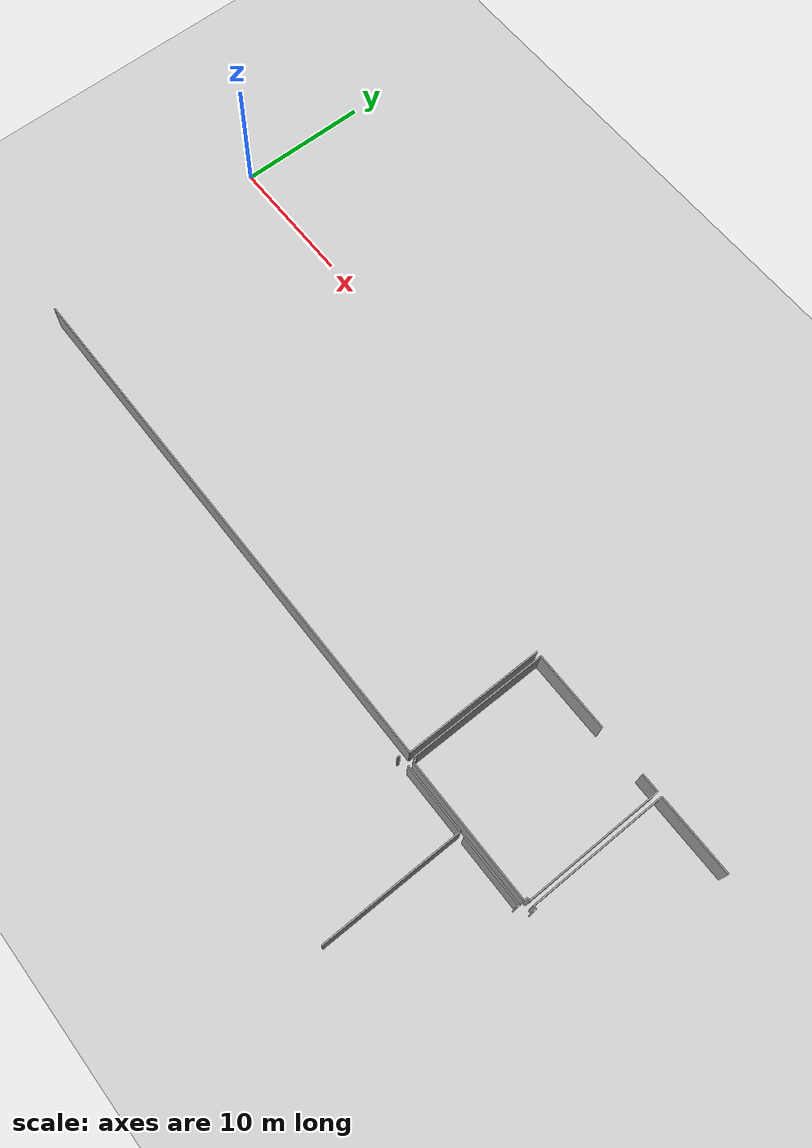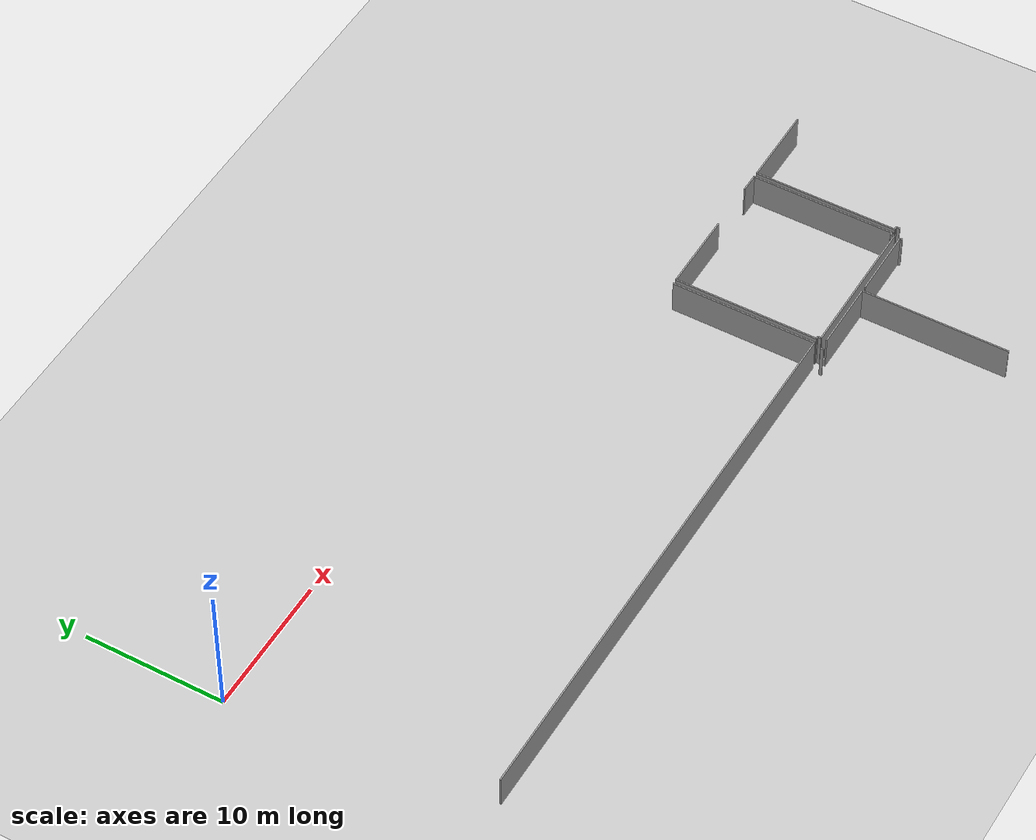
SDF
<sdf version="1.6">
 <world name="default">
  <model name="ground_plane">
   <static>1</static>
   <link name="link">
    <collision name="collision">
     <geometry><plane><normal>0 0 1</normal><size>100 100</size></plane></geometry>
     <surface><friction><ode><mu>100</mu><mu2>50</mu2></ode></friction></surface>
    </collision>
    <visual name="visual">
     <cast_shadows>0</cast_shadows>
     <geometry><plane><normal>0 0 1</normal><size>100 100</size></plane></geometry>
     <material>
      <script><uri>file://media/materials/scripts/gazebo.material</uri><name>Gazebo/Grey</name></script>
     </material>
    </visual>
   </link>
  </model>
  <model name="50015847">
   <static>1</static>
   <link name="Wall_978">
    <collision name="Wall_978_Collision">
     <geometry><box><size>10.3416891239 0.1 2.5</size></box></geometry>
     <pose>5.17084456196 0 1.25 0 0 0</pose>
    </collision>
    <visual name="Wall_978_Visual">
     <pose>5.17084456196 0 1.25 0 0 0</pose>
     <geometry><box><size>10.3416891239 0.1 2.5</size></box></geometry>
     <material>
      <script><uri>file://media/materials/scripts/gazebo.material</uri><name>Gazebo/Grey</name></script>
      <ambient>1 1 1 1</ambient>
     </material>
    </visual>
    <pose>185.824986017 -62.2814867545 0 0 0 1.57079632679</pose>
   </link>
   <link name="Wall_979">
    <collision name="Wall_979_Collision">
     <geometry><box><size>5.85371434382 0.1 2.5</size></box></geometry>
     <pose>2.92685717191 0 1.25 0 0 0</pose>
    </collision>
    <visual name="Wall_979_Visual">
     <pose>2.92685717191 0 1.25 0 0 0</pose>
     <geometry><box><size>5.85371434382 0.1 2.5</size></box></geometry>
     <material>
      <script><uri>file://media/materials/scripts/gazebo.material</uri><name>Gazebo/Grey</name></script>
      <ambient>1 1 1 1</ambient>
     </material>
    </visual>
    <pose>185.824986017 -51.9397976305 0 0 0 0.0</pose>
   </link>
   <link name="Wall_986">
    <collision name="Wall_986_Collision">
     <geometry><box><size>0.262368434433 0.1 2.5</size></box></geometry>
     <pose>0.131184217217 0 1.25 0 0 0</pose>
    </collision>
    <visual name="Wall_986_Visual">
     <pose>0.131184217217 0 1.25 0 0 0</pose>
     <geometry><box><size>0.262368434433 0.1 2.5</size></box></geometry>
     <material>
      <script><uri>file://media/materials/scripts/gazebo.material</uri><name>Gazebo/Grey</name></script>
      <ambient>1 1 1 1</ambient>
     </material>
    </visual>
    <pose>186.072100473 -62.530380841 0 0 0 1.57079632679</pose>
   </link>
   <link name="Wall_987">
    <collision name="Wall_987_Collision">
     <geometry><box><size>0.247481539232 0.1 2.5</size></box></geometry>
     <pose>0.123740769616 0 1.25 0 0 0</pose>
    </collision>
    <visual name="Wall_987_Visual">
     <pose>0.123740769616 0 1.25 0 0 0</pose>
     <geometry><box><size>0.247481539232 0.1 2.5</size></box></geometry>
     <material>
      <script><uri>file://media/materials/scripts/gazebo.material</uri><name>Gazebo/Grey</name></script>
      <ambient>1 1 1 1</ambient>
     </material>
    </visual>
    <pose>186.072100473 -62.2680124066 0 0 0 -3.08711984745</pose>
   </link>
   <link name="Wall_988">
    <collision name="Wall_988_Collision">
     <geometry><box><size>10.3345706005 0.1 2.5</size></box></geometry>
     <pose>5.16728530025 0 1.25 0 0 0</pose>
    </collision>
    <visual name="Wall_988_Visual">
     <pose>5.16728530025 0 1.25 0 0 0</pose>
     <geometry><box><size>10.3345706005 0.1 2.5</size></box></geometry>
     <material>
      <script><uri>file://media/materials/scripts/gazebo.material</uri><name>Gazebo/Grey</name></script>
      <ambient>1 1 1 1</ambient>
     </material>
    </visual>
    <pose>174.623735191 -62.2680124066 0 0 0 1.57079632679</pose>
   </link>
   <link name="Wall_989">
    <collision name="Wall_989_Collision">
     <geometry><box><size>5.8199013576 0.1 2.5</size></box></geometry>
     <pose>2.9099506788 0 1.25 0 0 0</pose>
    </collision>
    <visual name="Wall_989_Visual">
     <pose>2.9099506788 0 1.25 0 0 0</pose>
     <geometry><box><size>5.8199013576 0.1 2.5</size></box></geometry>
     <material>
      <script><uri>file://media/materials/scripts/gazebo.material</uri><name>Gazebo/Grey</name></script>
      <ambient>1 1 1 1</ambient>
     </material>
    </visual>
    <pose>174.623735191 -51.9334418061 0 0 0 0.0</pose>
   </link>
   <link name="Wall_990">
    <collision name="Wall_990_Collision">
     <geometry><box><size>1.35709564245 0.1 2.5</size></box></geometry>
     <pose>0.678547821223 0 1.25 0 0 0</pose>
    </collision>
    <visual name="Wall_990_Visual">
     <pose>0.678547821223 0 1.25 0 0 0</pose>
     <geometry><box><size>1.35709564245 0.1 2.5</size></box></geometry>
     <material>
      <script><uri>file://media/materials/scripts/gazebo.material</uri><name>Gazebo/Grey</name></script>
      <ambient>1 1 1 1</ambient>
     </material>
    </visual>
    <pose>184.110438806 -51.9334418061 0 0 0 0.0</pose>
   </link>
   <link name="Wall_991">
    <collision name="Wall_991_Collision">
     <geometry><box><size>10.3302486399 0.1 2.5</size></box></geometry>
     <pose>5.16512431993 0 1.25 0 0 0</pose>
    </collision>
    <visual name="Wall_991_Visual">
     <pose>5.16512431993 0 1.25 0 0 0</pose>
     <geometry><box><size>10.3302486399 0.1 2.5</size></box></geometry>
     <material>
      <script><uri>file://media/materials/scripts/gazebo.material</uri><name>Gazebo/Grey</name></script>
      <ambient>1 1 1 1</ambient>
     </material>
    </visual>
    <pose>185.467534449 -51.9334418061 0 0 0 -1.57079632679</pose>
   </link>
   <link name="Wall_992">
    <collision name="Wall_992_Collision">
     <geometry><box><size>0.210250673717 0.1 2.5</size></box></geometry>
     <pose>0.105125336859 0 1.25 0 0 0</pose>
    </collision>
    <visual name="Wall_992_Visual">
     <pose>0.105125336859 0 1.25 0 0 0</pose>
     <geometry><box><size>0.210250673717 0.1 2.5</size></box></geometry>
     <material>
      <script><uri>file://media/materials/scripts/gazebo.material</uri><name>Gazebo/Grey</name></script>
      <ambient>1 1 1 1</ambient>
     </material>
    </visual>
    <pose>185.467534449 -62.2636904459 0 0 0 3.14159265359</pose>
   </link>
   <link name="Wall_993">
    <collision name="Wall_993_Collision">
     <geometry><box><size>0.258046473789 0.1 2.5</size></box></geometry>
     <pose>0.129023236894 0 1.25 0 0 0</pose>
    </collision>
    <visual name="Wall_993_Visual">
     <pose>0.129023236894 0 1.25 0 0 0</pose>
     <geometry><box><size>0.258046473789 0.1 2.5</size></box></geometry>
     <material>
      <script><uri>file://media/materials/scripts/gazebo.material</uri><name>Gazebo/Grey</name></script>
      <ambient>1 1 1 1</ambient>
     </material>
    </visual>
    <pose>185.257283775 -62.2636904459 0 0 0 -1.57079632679</pose>
   </link>
   <link name="Wall_994">
    <collision name="Wall_994_Collision">
     <geometry><box><size>10.4321960645 0.1 2.5</size></box></geometry>
     <pose>5.21609803224 0 1.25 0 0 0</pose>
    </collision>
    <visual name="Wall_994_Visual">
     <pose>5.21609803224 0 1.25 0 0 0</pose>
     <geometry><box><size>10.4321960645 0.1 2.5</size></box></geometry>
     <material>
      <script><uri>file://media/materials/scripts/gazebo.material</uri><name>Gazebo/Grey</name></script>
      <ambient>1 1 1 1</ambient>
     </material>
    </visual>
    <pose>185.257283775 -62.5217369197 0 0 0 3.14159265359</pose>
   </link>
   <link name="Wall_995">
    <collision name="Wall_995_Collision">
     <geometry><box><size>0.243300961001 0.1 2.5</size></box></geometry>
     <pose>0.1216504805 0 1.25 0 0 0</pose>
    </collision>
    <visual name="Wall_995_Visual">
     <pose>0.1216504805 0 1.25 0 0 0</pose>
     <geometry><box><size>0.243300961001 0.1 2.5</size></box></geometry>
     <material>
      <script><uri>file://media/materials/scripts/gazebo.material</uri><name>Gazebo/Grey</name></script>
      <ambient>1 1 1 1</ambient>
     </material>
    </visual>
    <pose>174.82508771 -62.5217369197 0 0 0 1.57079632679</pose>
   </link>
   <link name="Wall_996">
    <collision name="Wall_996_Collision">
     <geometry><box><size>0.20162214047 0.1 2.5</size></box></geometry>
     <pose>0.100811070235 0 1.25 0 0 0</pose>
    </collision>
    <visual name="Wall_996_Visual">
     <pose>0.100811070235 0 1.25 0 0 0</pose>
     <geometry><box><size>0.20162214047 0.1 2.5</size></box></geometry>
     <material>
      <script><uri>file://media/materials/scripts/gazebo.material</uri><name>Gazebo/Grey</name></script>
      <ambient>1 1 1 1</ambient>
     </material>
    </visual>
    <pose>174.82508771 -62.2784359587 0 0 0 3.08987114654</pose>
   </link>
   <link name="Wall_1010">
    <collision name="Wall_1010_Collision">
     <geometry><box><size>10.3978746123 0.1 2.5</size></box></geometry>
     <pose>5.19893730615 0 1.25 0 0 0</pose>
    </collision>
    <visual name="Wall_1010_Visual">
     <pose>5.19893730615 0 1.25 0 0 0</pose>
     <geometry><box><size>10.3978746123 0.1 2.5</size></box></geometry>
     <material>
      <script><uri>file://media/materials/scripts/gazebo.material</uri><name>Gazebo/Grey</name></script>
      <ambient>1 1 1 1</ambient>
     </material>
    </visual>
    <pose>174.246961916 -51.9245436518 0 0 0 -1.57079632679</pose>
   </link>
   <link name="Wall_1011">
    <collision name="Wall_1011_Collision">
     <geometry><box><size>39.9694935375 0.1 2.5</size></box></geometry>
     <pose>19.9847467688 0 1.25 0 0 0</pose>
    </collision>
    <visual name="Wall_1011_Visual">
     <pose>19.9847467688 0 1.25 0 0 0</pose>
     <geometry><box><size>39.9694935375 0.1 2.5</size></box></geometry>
     <material>
      <script><uri>file://media/materials/scripts/gazebo.material</uri><name>Gazebo/Grey</name></script>
      <ambient>1 1 1 1</ambient>
     </material>
    </visual>
    <pose>174.246961916 -62.3224182641 0 0 0 3.14131914454</pose>
   </link>
   <link name="Wall_1552">
    <collision name="Wall_1552_Collision">
     <geometry><box><size>5.04474500432 0.1 2.5</size></box></geometry>
     <pose>2.52237250216 0 1.25 0 0 0</pose>
    </collision>
    <visual name="Wall_1552_Visual">
     <pose>2.52237250216 0 1.25 0 0 0</pose>
     <geometry><box><size>5.04474500432 0.1 2.5</size></box></geometry>
     <material>
      <script><uri>file://media/materials/scripts/gazebo.material</uri><name>Gazebo/Grey</name></script>
      <ambient>1 1 1 1</ambient>
     </material>
    </visual>
    <pose>180.218131896 -62.932068948 0 0 0 0.0</pose>
   </link>
   <link name="Wall_1553">
    <collision name="Wall_1553_Collision">
     <geometry><box><size>0.195759393909 0.1 2.5</size></box></geometry>
     <pose>0.0978796969543 0 1.25 0 0 0</pose>
    </collision>
    <visual name="Wall_1553_Visual">
     <pose>0.0978796969543 0 1.25 0 0 0</pose>
     <geometry><box><size>0.195759393909 0.1 2.5</size></box></geometry>
     <material>
      <script><uri>file://media/materials/scripts/gazebo.material</uri><name>Gazebo/Grey</name></script>
      <ambient>1 1 1 1</ambient>
     </material>
    </visual>
    <pose>185.2628769 -62.932068948 0 0 0 -1.57079632679</pose>
   </link>
   <link name="Wall_1567">
    <collision name="Wall_1567_Collision">
     <geometry><box><size>0.214064168404 0.1 2.5</size></box></geometry>
     <pose>0.107032084202 0 1.25 0 0 0</pose>
    </collision>
    <visual name="Wall_1567_Visual">
     <pose>0.107032084202 0 1.25 0 0 0</pose>
     <geometry><box><size>0.214064168404 0.1 2.5</size></box></geometry>
     <material>
      <script><uri>file://media/materials/scripts/gazebo.material</uri><name>Gazebo/Grey</name></script>
      <ambient>1 1 1 1</ambient>
     </material>
    </visual>
    <pose>174.006965984 -62.9173234352 0 0 0 -1.57079632679</pose>
   </link>
   <link name="Wall_1570">
    <collision name="Wall_1570_Collision">
     <geometry><box><size>5.03915187878 0.1 2.5</size></box></geometry>
     <pose>2.51957593939 0 1.25 0 0 0</pose>
    </collision>
    <visual name="Wall_1570_Visual">
     <pose>2.51957593939 0 1.25 0 0 0</pose>
     <geometry><box><size>5.03915187878 0.1 2.5</size></box></geometry>
     <material>
      <script><uri>file://media/materials/scripts/gazebo.material</uri><name>Gazebo/Grey</name></script>
      <ambient>1 1 1 1</ambient>
     </material>
    </visual>
    <pose>174.805003305 -62.9178319012 0 0 0 0.0</pose>
   </link>
   <link name="Wall_1571">
    <collision name="Wall_1571_Collision">
     <geometry><box><size>10.5941424722 0.1 2.5</size></box></geometry>
     <pose>5.29707123608 0 1.25 0 0 0</pose>
    </collision>
    <visual name="Wall_1571_Visual">
     <pose>5.29707123608 0 1.25 0 0 0</pose>
     <geometry><box><size>10.5941424722 0.1 2.5</size></box></geometry>
     <material>
      <script><uri>file://media/materials/scripts/gazebo.material</uri><name>Gazebo/Grey</name></script>
      <ambient>1 1 1 1</ambient>
     </material>
    </visual>
    <pose>179.844155184 -62.9178319012 0 0 0 -1.57079632679</pose>
   </link>
   <pose>-132.35 43.9162226064 0 0 0 0</pose>
  </model>
 </world>
</sdf>
